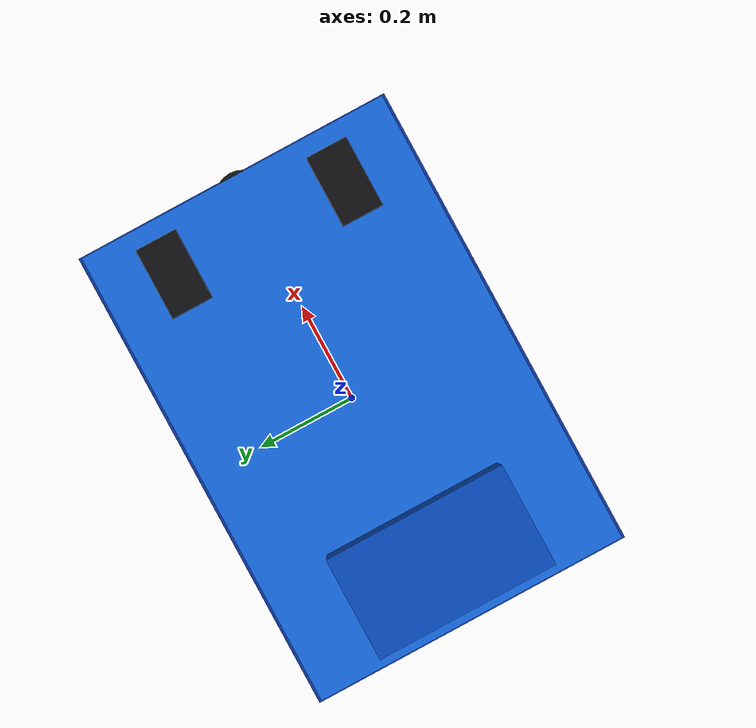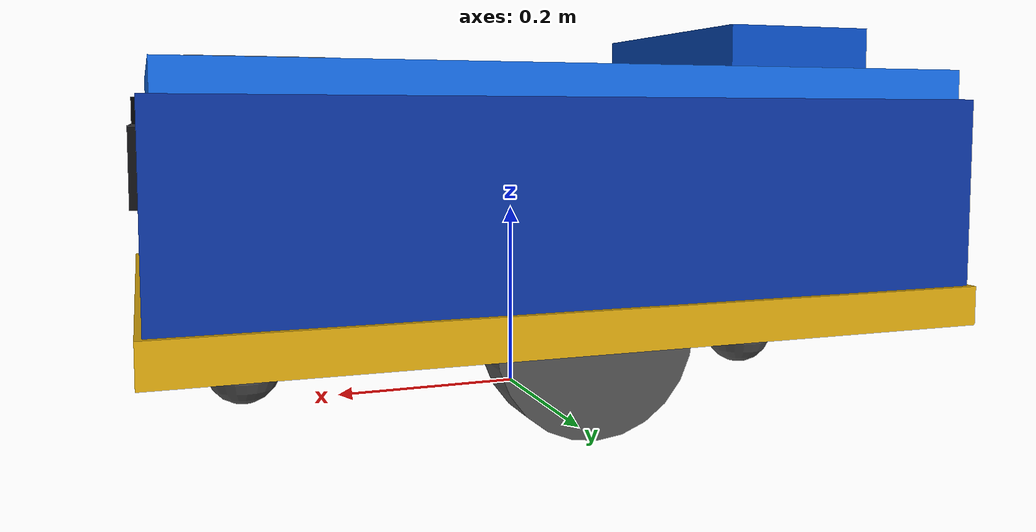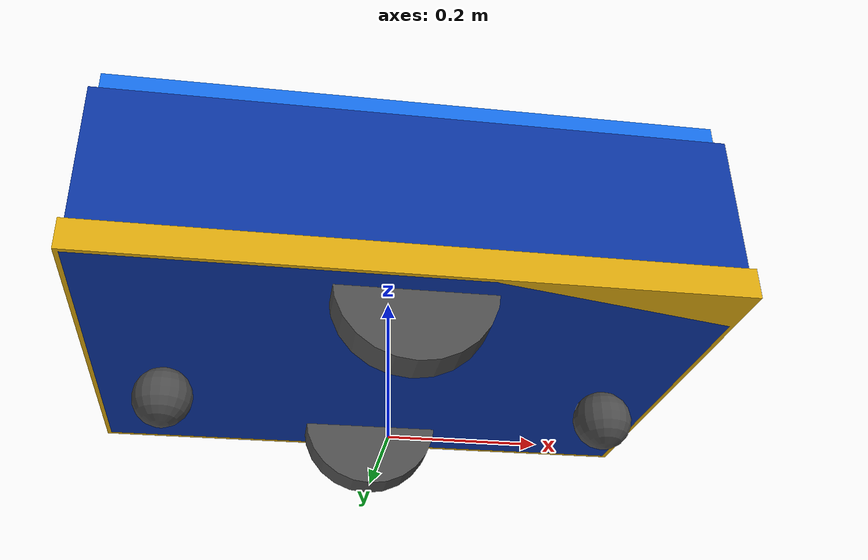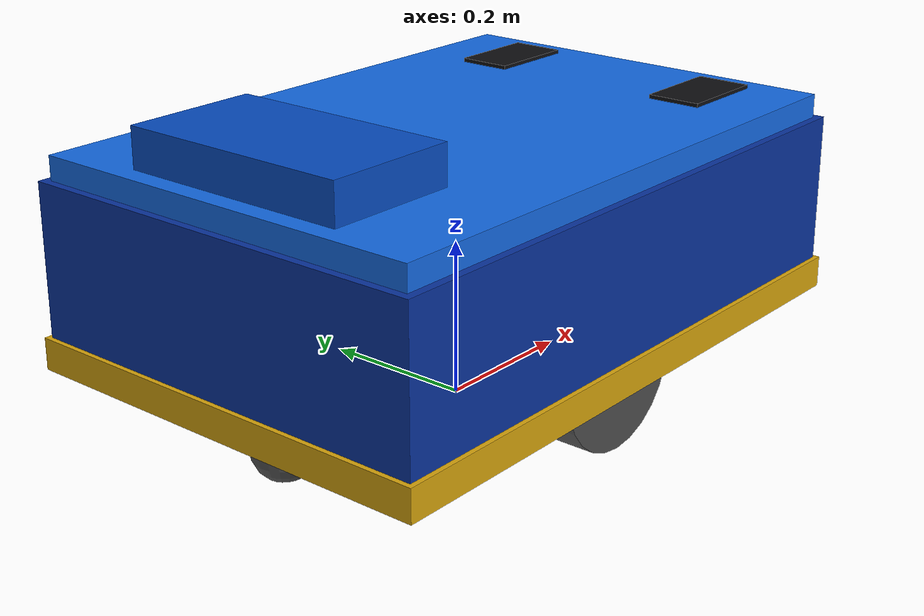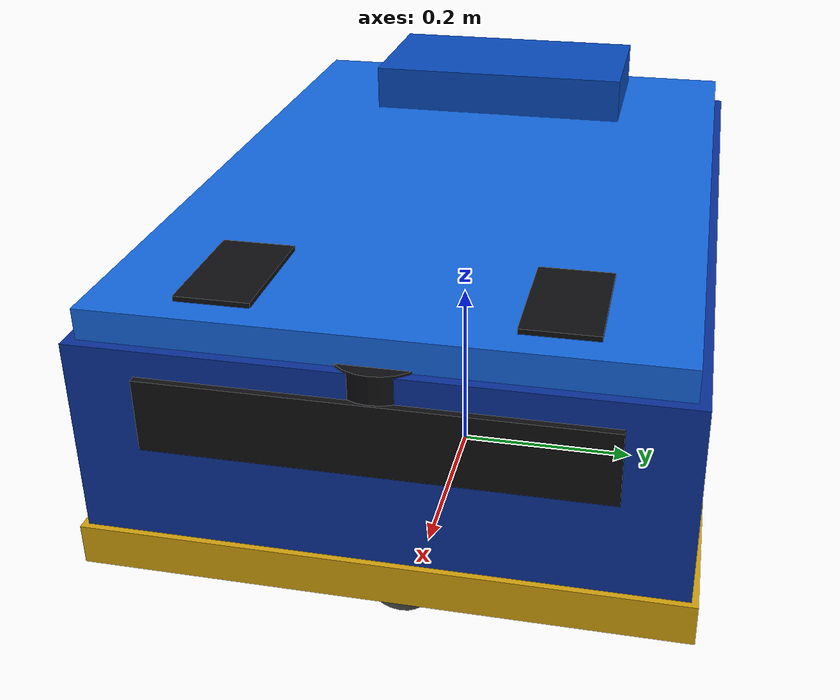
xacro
<?xml version="1.0"?>
<robot name="warehouse_amr" xmlns:xacro="http://ros.org/wiki/xacro">

  <!-- Arguments -->
  <xacro:arg name="namespace" default=""/>
  <xacro:arg name="use_lidar" default="true"/>
  <!-- Accepted and ignored: this chassis carries no marker disks. Kept so the
       shared launch files can pass the flag to either robot. -->
  <xacro:arg name="show_pose_markers" default="false"/>
  <xacro:property name="ns" value="$(arg namespace)"/>

  <xacro:property name="pm_front_x" value="0.300"/>
  <xacro:property name="pm_rear_x"  value="-0.300"/>
  <xacro:property name="pm_marker_y" value="0.0"/>
  <xacro:property name="pm_marker_z" value="0.340"/>

  <!-- Chassis geometry -->
  <xacro:property name="body_l" value="0.800"/>
  <xacro:property name="body_w" value="0.550"/>
  <xacro:property name="skirt_z0" value="0.080"/>   <!-- base_link frame -->
  <xacro:property name="deck_z1" value="0.340"/>
  <xacro:property name="wheel_r" value="0.100"/>
  <xacro:property name="wheel_sep" value="0.440"/>

  <!-- Materials -->
  <material name="chassis_blue"><color rgba="0.04 0.20 0.62 1.0"/></material>
  <material name="deck_blue"><color rgba="0.08 0.42 0.90 1.0"/></material>
  <material name="hazard_yellow"><color rgba="0.85 0.65 0.05 1.0"/></material>
  <material name="sensor_black"><color rgba="0.06 0.06 0.07 1.0"/></material>
  <material name="cabinet_blue"><color rgba="0.03 0.30 0.76 1.0"/></material>
  <material name="dark"><color rgba="0.3 0.3 0.3 1"/></material>

  <!-- Base -->
  <link name="${ns}base_footprint"/>

  <joint name="${ns}base_joint" type="fixed">
    <parent link="${ns}base_footprint"/>
    <child link="${ns}base_link"/>
    <origin xyz="0 0 0.010"/>
  </joint>

  <link name="${ns}base_link">
    <visual>
      <origin xyz="0 0 0.195"/>
      <geometry><box size="${body_l} ${body_w} 0.230"/></geometry>
      <material name="chassis_blue"/>
    </visual>

    <collision>
      <origin xyz="0 0 0.195"/>
      <geometry><box size="${body_l} ${body_w} 0.270"/></geometry>
    </collision>

    <inertial>
      <mass value="60.0"/>
      <origin xyz="0 0 0.180"/>
      <!-- solid box 0.80 x 0.55 x 0.26 about its own centre -->
      <inertia
        ixx="1.85050e+00" ixy="0.0" ixz="0.0"
        iyy="3.53800e+00" iyz="0.0"
        izz="4.71250e+00"/>
    </inertial>
  </link>

  <!-- Painted trim, one link each. -->
  <xacro:macro name="trim" params="name xyz size material">
    <joint name="${ns}${name}_joint" type="fixed">
      <parent link="${ns}base_link"/>
      <child link="${ns}${name}_link"/>
      <origin xyz="${xyz}"/>
    </joint>
    <link name="${ns}${name}_link">
      <visual>
        <geometry><box size="${size}"/></geometry>
        <material name="${material}"/>
      </visual>
      <inertial>
        <mass value="0.001"/>
        <inertia ixx="1e-7" ixy="0" ixz="0" iyy="1e-7" iyz="0" izz="1e-7"/>
      </inertial>
    </link>
  </xacro:macro>

  <!-- hazard bumper band around the bottom edge, proud of the shell -->
  <xacro:trim name="bumper" xyz="0 0 0.100"
              size="${body_l + 0.012} ${body_w + 0.012} 0.040"
              material="hazard_yellow"/>

  <!-- load deck: the surface an overhead camera actually sees -->
  <xacro:trim name="deck" xyz="0 0 0.325"
              size="${body_l - 0.020} ${body_w - 0.020} 0.030"
              material="deck_blue"/>

  <!-- FRONT cue: recessed sensor bar across the leading face -->
  <xacro:trim name="sensor_bar" xyz="0.392 0 0.250"
              size="0.030 0.420 0.070" material="sensor_black"/>

  <!-- FRONT cue seen from above: two dark slots let into the deck -->
  <xacro:trim name="deck_slot_left"  xyz="0.300 0.150 0.341"
              size="0.120 0.070 0.008" material="sensor_black"/>
  <xacro:trim name="deck_slot_right" xyz="0.300 -0.150 0.341"
              size="0.120 0.070 0.008" material="sensor_black"/>

  <!-- REAR cue: raised control cabinet, the tallest thing on the deck -->
  <xacro:trim name="cabinet" xyz="-0.280 0 0.365"
              size="0.170 0.300 0.050" material="cabinet_blue"/>

  <!-- Drive wheels -->
  <xacro:macro name="drive_wheel" params="side y_sign">
    <joint name="${ns}wheel_${side}_joint" type="continuous">
      <parent link="${ns}base_link"/>
      <child link="${ns}wheel_${side}_link"/>
      <origin xyz="0 ${y_sign * wheel_sep / 2} ${wheel_r - 0.010}" rpy="-1.5708 0 0"/>
      <axis xyz="0 0 1"/>
    </joint>

    <link name="${ns}wheel_${side}_link">
      <visual>
        <geometry><cylinder length="0.050" radius="${wheel_r}"/></geometry>
        <material name="dark"/>
      </visual>
      <collision>
        <geometry><cylinder length="0.050" radius="${wheel_r}"/></geometry>
      </collision>
      <inertial>
        <mass value="2.0"/>
        <origin xyz="0 0 0"/>
        <inertia
          ixx="5.41667e-03" ixy="0.0" ixz="0.0"
          iyy="5.41667e-03" iyz="0.0"
          izz="1.00000e-02"/>
      </inertial>
    </link>
  </xacro:macro>

  <xacro:drive_wheel side="left"  y_sign="1"/>
  <xacro:drive_wheel side="right" y_sign="-1"/>

  <!-- Casters fore and aft -->
  <xacro:macro name="caster" params="name x">
    <joint name="${ns}${name}_joint" type="fixed">
      <parent link="${ns}base_link"/>
      <child link="${ns}${name}_link"/>
      <origin xyz="${x} 0 0.030"/>
    </joint>
    <link name="${ns}${name}_link">
      <visual>
        <geometry><sphere radius="0.040"/></geometry>
        <material name="dark"/>
      </visual>
      <collision>
        <geometry><sphere radius="0.040"/></geometry>
      </collision>
      <inertial>
        <mass value="0.30"/>
        <inertia ixx="1.92e-04" ixy="0" ixz="0" iyy="1.92e-04" iyz="0" izz="1.92e-04"/>
      </inertial>
    </link>
    <gazebo reference="${ns}${name}_link">
      <mu1>0.05</mu1>
      <mu2>0.05</mu2>
    </gazebo>
  </xacro:macro>

  <xacro:caster name="caster_front" x="0.300"/>
  <xacro:caster name="caster_rear"  x="-0.300"/>

  <!-- IMU -->
  <joint name="${ns}imu_joint" type="fixed">
    <parent link="${ns}base_link"/>
    <child link="${ns}imu_link"/>
    <origin xyz="0 0 0.200"/>
  </joint>
  <link name="${ns}imu_link"/>

  <!-- LiDAR: front-mounted, same sensor contract as the Burger so every
       downstream consumer of /scan is unchanged. -->
  <joint name="${ns}scan_joint" type="fixed">
    <parent link="${ns}base_link"/>
    <child link="${ns}base_scan"/>
    <origin xyz="0.360 0 0.290"/>
  </joint>

  <link name="${ns}base_scan">
    <visual>
      <geometry><cylinder length="0.045" radius="0.045"/></geometry>
      <material name="sensor_black"/>
    </visual>
    <inertial>
      <mass value="0.114"/>
      <origin xyz="0 0 0"/>
      <inertia ixx="0.001" ixy="0.0" ixz="0.0" iyy="0.001" iyz="0.0" izz="0.001"/>
    </inertial>
  </link>

  <!-- Gazebo Sensor Plugins -->
  <xacro:if value="$(arg use_lidar)">
    <gazebo reference="${ns}base_scan">
      <sensor name="lidar" type="gpu_lidar">
        <pose>0 0 0 0 0 0</pose>
        <topic>scan</topic>
        <update_rate>5</update_rate>
        <ray>
          <scan>
            <horizontal>
              <samples>360</samples>
              <resolution>1</resolution>
              <min_angle>0.0</min_angle>
              <max_angle>6.28318</max_angle>
            </horizontal>
          </scan>
          <range>
            <min>0.12</min>
            <max>3.5</max>
          </range>
        </ray>
        <always_on>true</always_on>
        <visualize>true</visualize>
      </sensor>
    </gazebo>
  </xacro:if>

  <gazebo reference="${ns}base_link">
    <sensor name="body_contact" type="contact">
      <!-- sdformat lumps the fixed base_joint into base_footprint and assigns
           this deterministic collision name (verified with `ign sdf -p`). -->
      <contact><collision>${ns}base_footprint_fixed_joint_lump__base_link_collision</collision></contact>
      <update_rate>10</update_rate>
      <always_on>true</always_on>
    </sensor>
  </gazebo>

  <!-- ================= Gazebo Harmonic DiffDrive ================= -->
  <gazebo>
    <plugin
        filename="gz-sim-label-system"
        name="ignition::gazebo::systems::Label">
      <label>23</label>
    </plugin>

    <plugin
        filename="libsim_command_guard.so"
        name="sim_command_guard::CommandGuardSystem">
      <input_topic>/model/turtlebot3/cmd_vel_guard_input</input_topic>
      <output_topic>/model/turtlebot3/cmd_vel_applied</output_topic>
      <outcome_topic>/model/turtlebot3/actuation_outcome</outcome_topic>
      <command_timeout>0.5</command_timeout>
    </plugin>

    <plugin
        filename="gz-sim-joint-state-publisher-system"
        name="gz::sim::systems::JointStatePublisher">
      <topic>/model/turtlebot3/joint_states</topic>
      <update_rate>50</update_rate>
    </plugin>

    <plugin
        filename="gz-sim-diff-drive-system"
        name="gz::sim::systems::DiffDrive">

      <left_joint>${ns}wheel_left_joint</left_joint>
      <right_joint>${ns}wheel_right_joint</right_joint>

      <wheel_separation>${wheel_sep}</wheel_separation>
      <wheel_radius>${wheel_r}</wheel_radius>

      <topic>/model/turtlebot3/cmd_vel_applied</topic>
      <odom_topic>/model/turtlebot3/odometry</odom_topic>
      <tf_topic>/model/turtlebot3/tf</tf_topic>

      <frame_id>odom</frame_id>
      <child_frame_id>base_footprint</child_frame_id>

      <odom_publish_frequency>50</odom_publish_frequency>
      <publish_tf>true</publish_tf>
    </plugin>
  </gazebo>

</robot>
